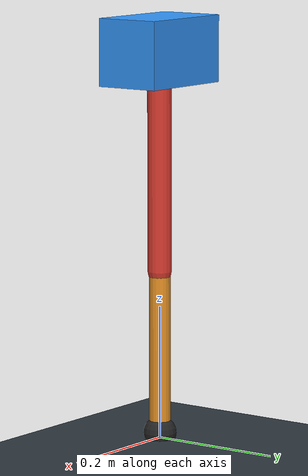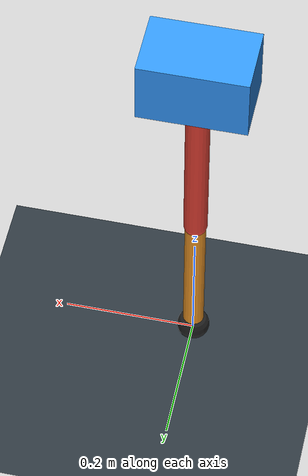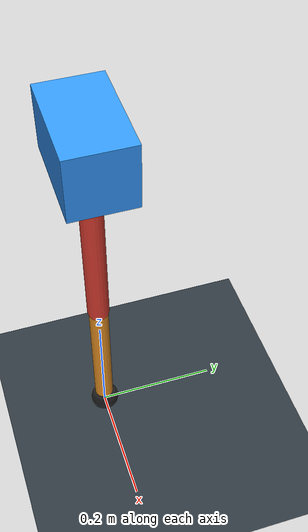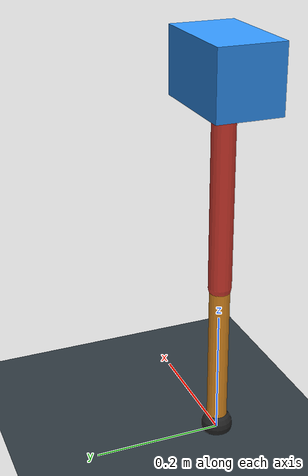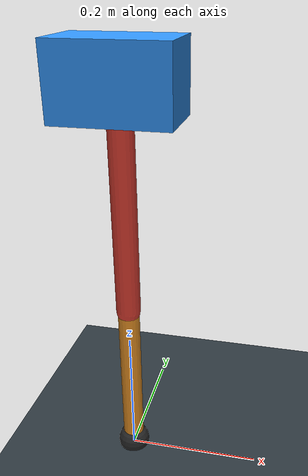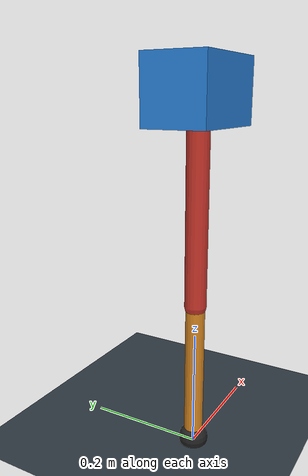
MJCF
<mujoco model="single_axis_two_bar">
  <compiler angle="radian" inertiafromgeom="true"/>
  <option timestep="0.001" integrator="implicitfast" gravity="0 0 -9.81"/>
  <default>
    <joint damping="0.08"/>
    <geom friction="1.2 0.01 0.0001" condim="3"/>
  </default>
  <worldbody>
    <geom name="floor" type="plane" size="5 5 0.1" rgba="0.18 0.22 0.25 1"/>
    <body name="carriage" pos="0 0 0.5833436255046548">
      <joint name="pole_slide" type="slide" axis="0 0 1"/>
      <geom name="payload" type="box" size="0.08 0.05 0.05" mass="2.3380392437760475" rgba="0.2 0.6 1 1"/>
      <body name="thigh" pos="0 0 0">
        <joint name="hip" type="hinge" axis="0 1 0"/>
        <geom name="thigh_link" type="capsule" fromto="0 0 0 0 0 -0.3299949989948838" size="0.018" mass="0.23512579728304672" rgba="0.9 0.25 0.2 1"/>
        <body name="shank" pos="0 0 -0.3299949989948838">
          <joint name="knee" type="hinge" axis="0 1 0"/>
          <geom name="shank_link" type="capsule" fromto="0 0 0 0 0 -0.24561698606146132" size="0.016" mass="0.17500534811091312" rgba="0.95 0.6 0.15 1"/>
          <geom name="foot" type="sphere" pos="0 0 -0.24561698606146132" size="0.025" mass="0.03" rgba="0.15 0.15 0.15 1"/>
          <site name="toe" pos="0 0 -0.24561698606146132" size="0.008"/>
        </body>
      </body>
    </body>
  </worldbody>
  <actuator>
    <motor name="hip_motor" joint="hip" ctrlrange="-31.65090274084782 31.65090274084782"/>
    <motor name="knee_motor" joint="knee" ctrlrange="-104.61568344060136 104.61568344060136"/>
  </actuator>
</mujoco>
